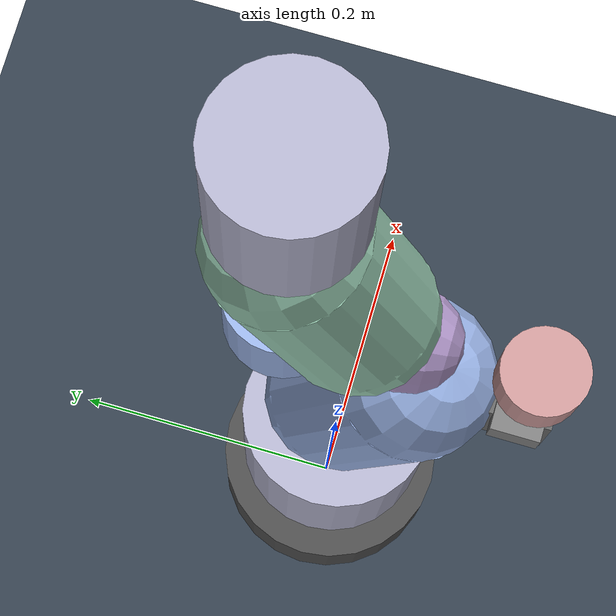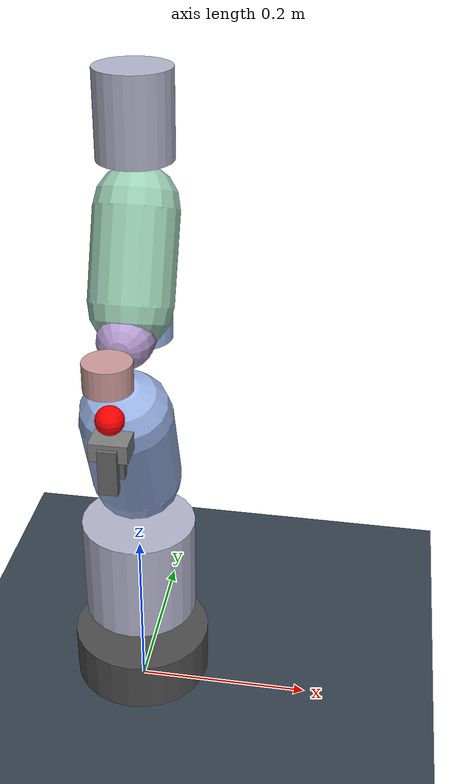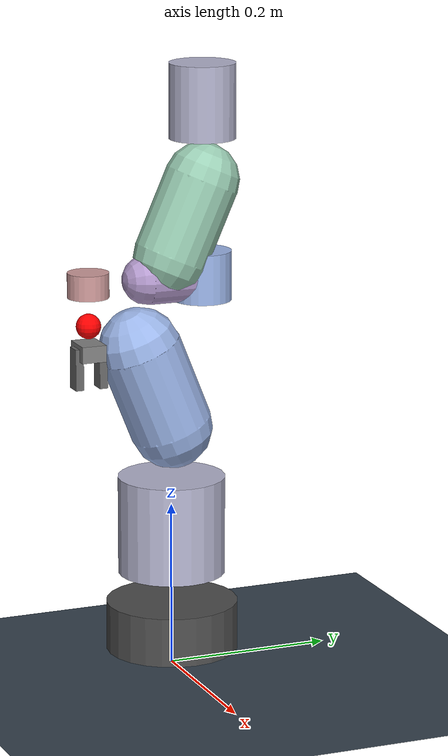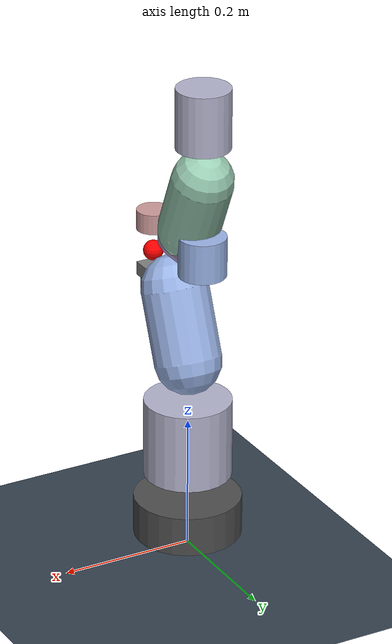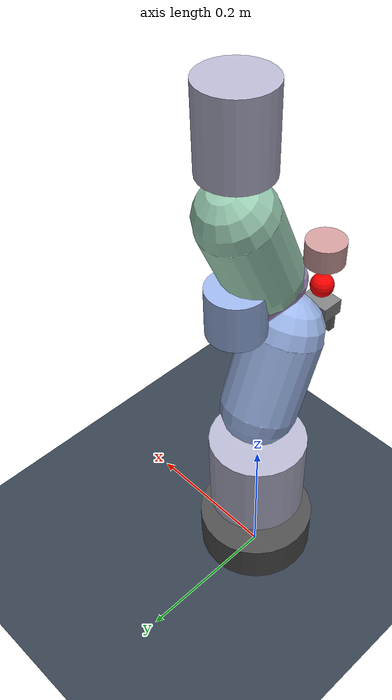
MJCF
<?xml version="1.0" ?>
<mujoco model="realman_rm75b">
  <compiler angle="radian" meshdir="realman_75/meshes" autolimits="true"/>

  <option timestep="0.002" integrator="implicit" impratio="2">
    <flag warmstart="enable" gravity="enable"/>
  </option>

  <visual>
    <global offwidth="1920" offheight="1080"/>
    <quality shadowsize="4096"/>
    <map fogstart="3" fogend="5"/>
  </visual>

  <asset>
    <!-- Materials -->
    <material name="robot_material" rgba="0.8 0.8 0.9 1"/>
    <material name="joint_material" rgba="0.3 0.3 0.3 1"/>

    <!-- Textures for better VR visualization -->
    <texture name="grid" type="2d" builtin="checker" width="512" height="512"
             rgb1="0.2 0.3 0.4" rgb2="0.1 0.15 0.2"/>
    <material name="grid_mat" texture="grid" texrepeat="10 10" texuniform="true"/>
  </asset>

  <worldbody>
    <!-- Ground plane for VR spatial reference -->
    <geom name="ground" type="plane" size="2 2 0.01" rgba="0.2 0.25 0.3 1" material="grid_mat"/>

    <!-- Lighting for VR -->
    <light directional="true" pos="1 1 3" dir="-1 -1 -2" diffuse="0.8 0.8 0.8"/>
    <light directional="true" pos="-1 1 3" dir="1 -1 -2" diffuse="0.6 0.6 0.6"/>

    <!-- Robot base -->
    <body name="base_link" pos="0 0 0.05">
      <inertial pos="0.00049987 5.2709E-05 0.060019" mass="1.862"
                diaginertia="0.0017232 0.0017051 0.00090158"/>
      <geom type="cylinder" size="0.08 0.03" rgba="0.3 0.3 0.3 1"/>

      <!-- Link 1 -->
      <body name="link_1" pos="0 0 0.1265">
        <inertial pos="0 0.00029 0.11489" mass="1.326"
                  diaginertia="0.00401578 0.00401359 0.00120239"/>
        <joint name="joint_1" type="hinge" axis="0 0 1"
               range="-3.14 3.14" damping="2.0" armature="0.1"/>
        <geom type="cylinder" size="0.065 0.06" rgba="0.7 0.7 0.8 1"/>

        <!-- Link 2 -->
        <body name="link_2" pos="0 0 0.121">
          <inertial pos="0.00001 -0.03887 0.09889" mass="1.547"
                    diaginertia="0.01004721 0.00974238 0.00173129"/>
          <joint name="joint_2" type="hinge" axis="0 1 0"
                 range="-2.094 2.094" damping="2.0" armature="0.1"/>
          <geom type="capsule" fromto="0 0 0 0 -0.04 0.1" size="0.05"
                rgba="0.6 0.7 0.9 1"/>

          <!-- Link 3 -->
          <body name="link_3" pos="0 0 0.2085">
            <inertial pos="0 0.03844 0.08783" mass="1.246"
                      diaginertia="0.00652018 0.00612084 0.00137572"/>
            <joint name="joint_3" type="hinge" axis="0 1 0"
                   range="-2.967 2.967" damping="1.5" armature="0.08"/>
            <geom type="capsule" fromto="0 0 0 0 0.04 0.09" size="0.045"
                  rgba="0.6 0.8 0.7 1"/>

            <!-- Link 4 -->
            <body name="link_4" pos="0 0.0405 0.18475">
              <inertial pos="-0.000013 -0.000051 -0.089629" mass="0.678"
                        diaginertia="0.001850887 0.001843382 0.000230011"/>
              <joint name="joint_4" type="hinge" axis="0 0 1"
                     range="-2.356 2.356" damping="1.0" armature="0.05"/>
              <geom type="cylinder" size="0.04 0.045" rgba="0.7 0.7 0.8 1"/>

              <!-- Link 5 -->
              <body name="link_5" pos="0 0 -0.21">
                <inertial pos="0.000078 -0.012937 -0.008781" mass="0.619"
                          diaginertia="0.000627336 0.000542455 0.000370291"/>
                <joint name="joint_5" type="hinge" axis="0 0 1"
                       range="-3.106 3.106" damping="0.8" armature="0.04"/>
                <geom type="cylinder" size="0.035 0.03" rgba="0.6 0.7 0.9 1"/>

                <!-- Link 6 -->
                <body name="link_6" pos="0 -0.001 0">
                  <inertial pos="-0.000014 -0.078524 0.002819" mass="0.602"
                            diaginertia="0.000780774 0.000289973 0.000763955"/>
                  <joint name="joint_6" type="hinge" axis="0 1 0"
                         range="-2.234 2.234" damping="0.8" armature="0.04"/>
                  <geom type="capsule" fromto="0 0 0 0 -0.07 0" size="0.03"
                        rgba="0.7 0.6 0.8 1"/>

                  <!-- Link 7 (End Effector) -->
                  <body name="link_7" pos="0 -0.144 0">
                    <inertial pos="0.001094 -0.000077 -0.010119" mass="0.107"
                              diaginertia="0.000044123 0.000035078 0.000065445"/>
                    <joint name="joint_7" type="hinge" axis="0 0 1"
                           range="-6.28 6.28" damping="0.5" armature="0.03"/>
                    <geom type="cylinder" size="0.025 0.015" rgba="0.8 0.6 0.6 1"/>

                    <!-- End effector site for IK control -->
                    <site name="ee_site" pos="0 0 -0.05" size="0.015"
                          rgba="1 0 0 1" type="sphere"/>

                    <!-- Gripper visualization (simple) -->
                    <body name="gripper_base" pos="0 0 -0.08">
                      <geom type="box" size="0.02 0.015 0.01" rgba="0.5 0.5 0.5 1"/>

                      <!-- Left finger -->
                      <body name="left_finger" pos="0 -0.015 -0.02">
                        <joint name="gripper_left" type="slide" axis="0 1 0"
                               range="-0.02 0.01" damping="0.5"/>
                        <geom type="box" size="0.01 0.005 0.025" rgba="0.4 0.4 0.4 1"/>
                      </body>

                      <!-- Right finger -->
                      <body name="right_finger" pos="0 0.015 -0.02">
                        <joint name="gripper_right" type="slide" axis="0 -1 0"
                               range="-0.02 0.01" damping="0.5"/>
                        <geom type="box" size="0.01 0.005 0.025" rgba="0.4 0.4 0.4 1"/>
                      </body>
                    </body>
                  </body>
                </body>
              </body>
            </body>
          </body>
        </body>
      </body>
    </body>

    <!-- VR cameras -->
    <camera name="vr_left_eye" pos="0.5 -0.5 0.8" xyaxes="0.866 0.5 0 -0.25 0.433 0.866" fovy="90"/>
    <camera name="vr_right_eye" pos="0.5 -0.5 0.8" xyaxes="0.866 0.5 0 -0.25 0.433 0.866" fovy="90"/>
    <camera name="tracking" pos="1.5 -1.5 1.2" xyaxes="0.707 0.707 0 -0.408 0.408 0.816" mode="trackcom"/>
  </worldbody>

  <actuator>
    <!-- Position control for all joints -->
    <position name="actuator_1" joint="joint_1" kp="100" kv="10" forcerange="-87 87"/>
    <position name="actuator_2" joint="joint_2" kp="100" kv="10" forcerange="-87 87"/>
    <position name="actuator_3" joint="joint_3" kp="100" kv="10" forcerange="-87 87"/>
    <position name="actuator_4" joint="joint_4" kp="80" kv="8" forcerange="-30 30"/>
    <position name="actuator_5" joint="joint_5" kp="80" kv="8" forcerange="-10 10"/>
    <position name="actuator_6" joint="joint_6" kp="60" kv="6" forcerange="-10 10"/>
    <position name="actuator_7" joint="joint_7" kp="60" kv="6" forcerange="-10 10"/>
    <position name="gripper_left_actuator" joint="gripper_left" kp="50" kv="5" forcerange="-5 5"/>
    <position name="gripper_right_actuator" joint="gripper_right" kp="50" kv="5" forcerange="-5 5"/>
  </actuator>

  <keyframe>
    <!-- Home pose -->
    <key name="home" qpos="0 0 0 0 0 0 0 0 0"/>

    <!-- Ready pose for VR teleoperation -->
    <key name="ready" qpos="0 -0.5 0.8 0 0.5 0 0 0 0"/>

    <!-- Reach forward -->
    <key name="reach" qpos="0 0.3 0.3 0 -0.6 0 0 0 0"/>
  </keyframe>

  <sensor>
    <!-- Joint position sensors -->
    <jointpos name="joint_1_pos" joint="joint_1"/>
    <jointpos name="joint_2_pos" joint="joint_2"/>
    <jointpos name="joint_3_pos" joint="joint_3"/>
    <jointpos name="joint_4_pos" joint="joint_4"/>
    <jointpos name="joint_5_pos" joint="joint_5"/>
    <jointpos name="joint_6_pos" joint="joint_6"/>
    <jointpos name="joint_7_pos" joint="joint_7"/>

    <!-- End effector pose sensor -->
    <framepos name="ee_pos" objtype="site" objname="ee_site"/>
    <framequat name="ee_quat" objtype="site" objname="ee_site"/>
  </sensor>
</mujoco>
